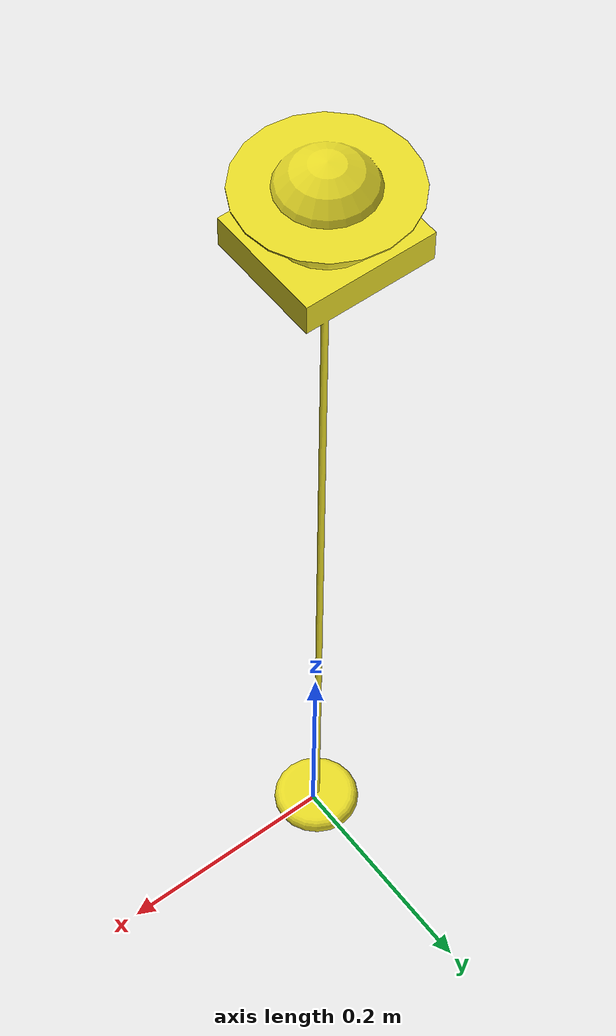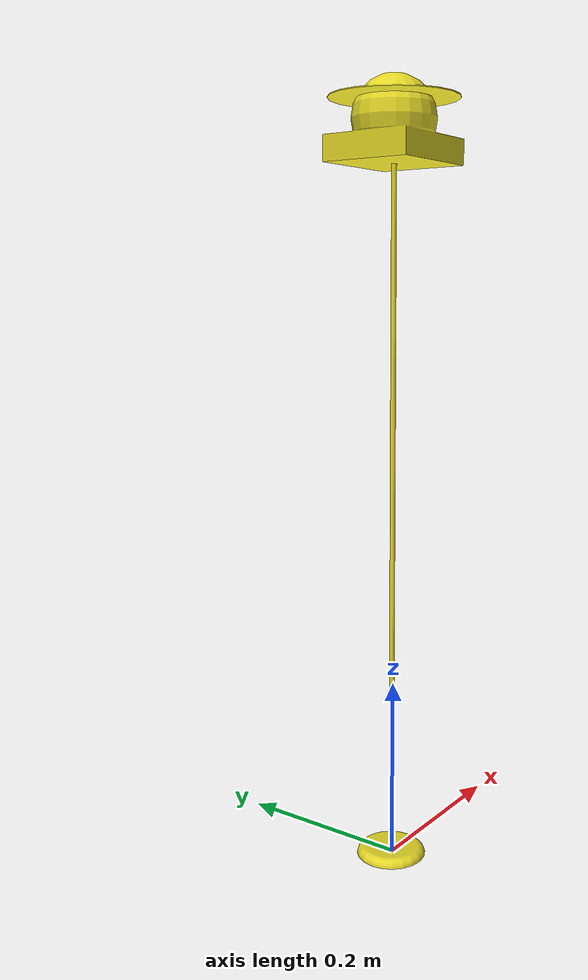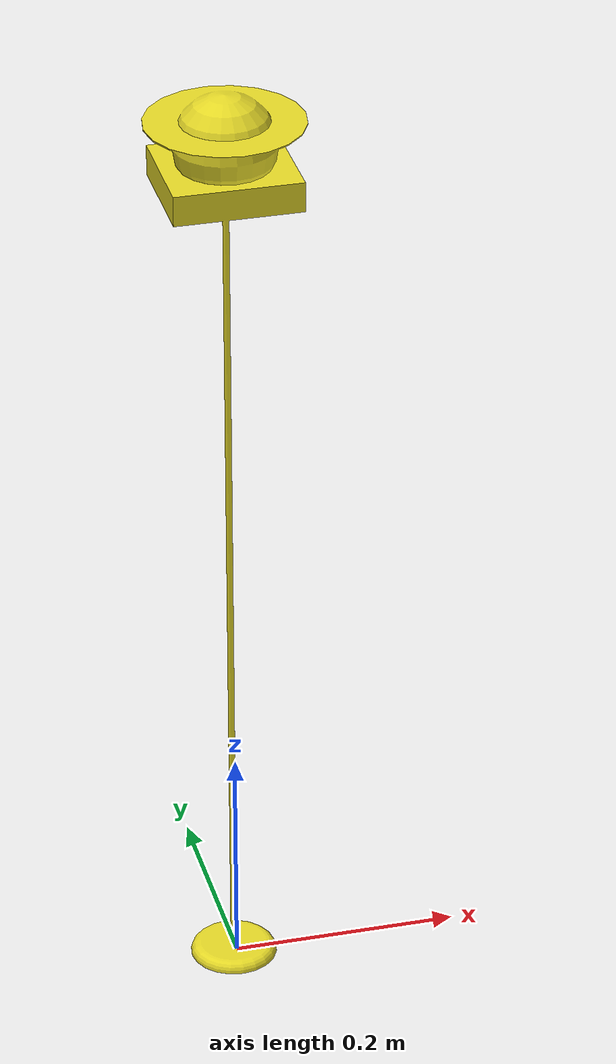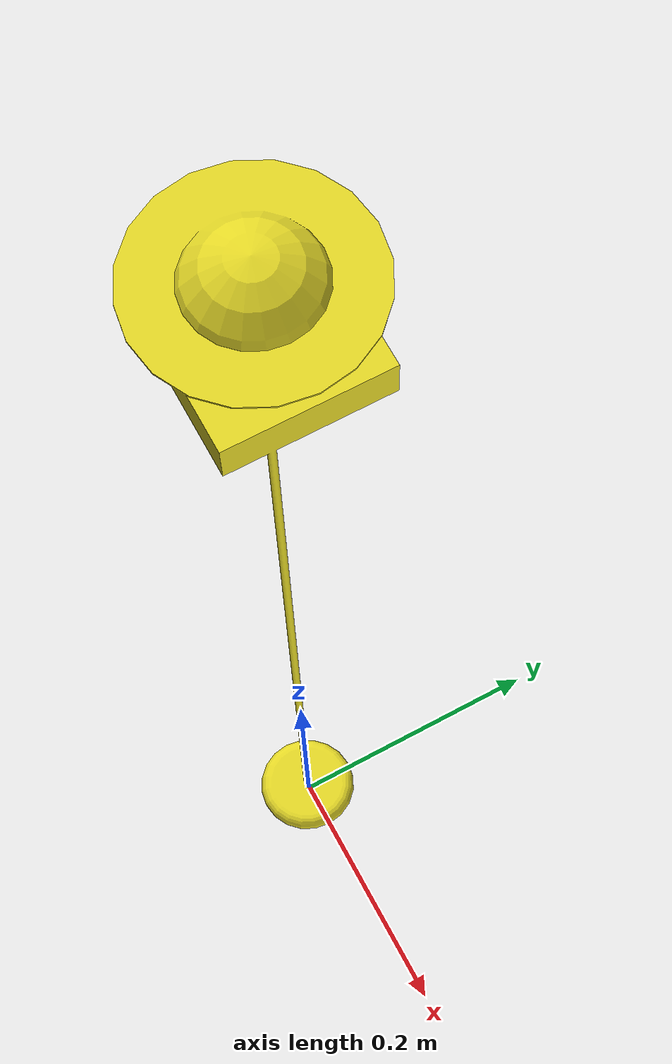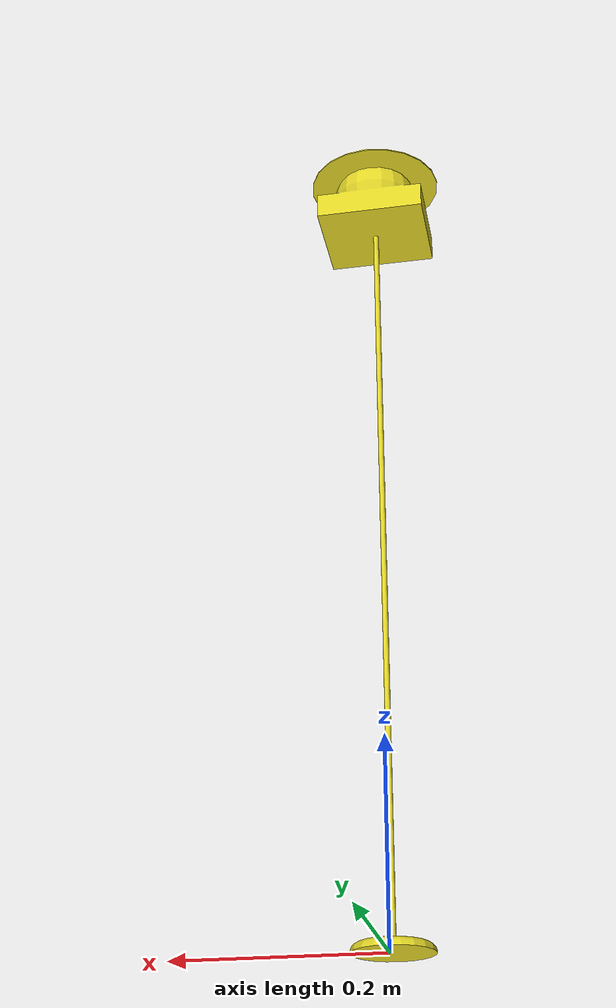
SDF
<?xml version='1.0'?>
<sdf version='1.6'>
  <model name='Plafon'>
    <link name='Plafon'>
      <pose frame=''>0 0 0 0 -0 0</pose>
      <inertial>
        <mass>1</mass>
        <inertia>
          <ixx>0.166667</ixx>
          <ixy>0</ixy>
          <ixz>0</ixz>
          <iyy>0.166667</iyy>
          <iyz>0</iyz>
          <izz>0.166667</izz>
        </inertia>
        <pose frame=''>0 0 0 0 -0 0</pose>
      </inertial>
      <self_collide>0</self_collide>
      <kinematic>0</kinematic>
      <gravity>1</gravity>
      <visual name='visual'>
        <pose frame=''>0 0 0 0 -0 0</pose>
        <geometry>
          <mesh>
            <uri>model://plastun_gazebo/maps/Plafon/plafon.dae</uri>
            <scale>1 1 1</scale>
          </mesh>
        </geometry>
        <material>
          <lighting>1</lighting>
          <script>
            <uri>file://media/materials/scripts/gazebo.material</uri>
            <name>Gazebo/Yellow</name>
          </script>
        </material>
      </visual>
    </link>
    <static>1</static>
    <allow_auto_disable>1</allow_auto_disable>
  </model>
</sdf>
